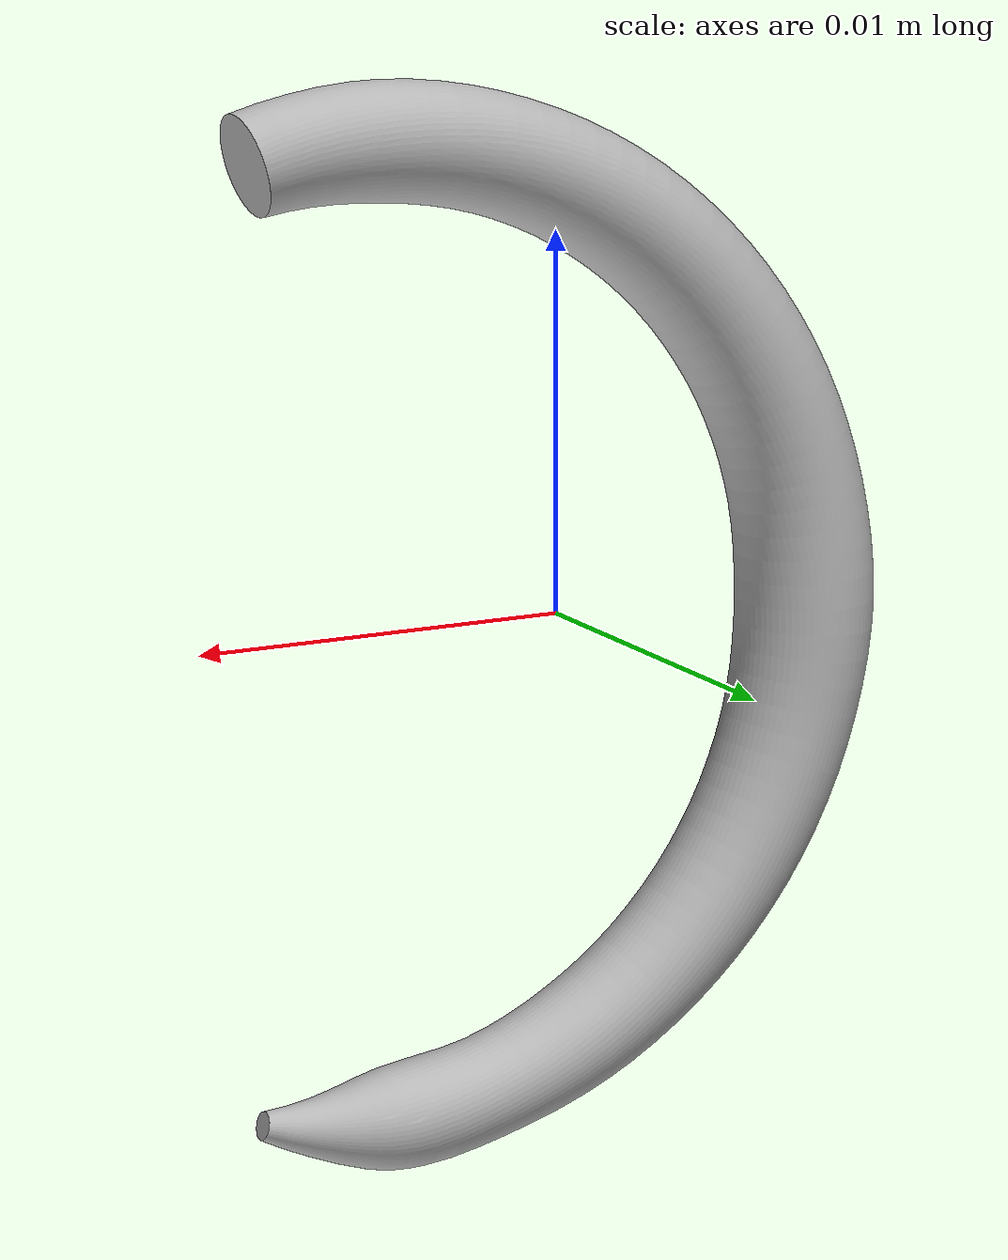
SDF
<sdf version='1.6'>
  <model name='target_object'>
    <link name='right_t1_target_base_link'>
      <pose frame=''>0 0 0 0 -0 0</pose>
      <inertial>
        <pose frame=''>0 0 0 0 -0 0</pose>
        <mass>0.0001</mass>
        <inertia>
          <ixx>1e-09</ixx>
          <ixy>0</ixy>
          <ixz>0</ixz>
          <iyy>1e-09</iyy>
          <iyz>0</iyz>
          <izz>1e-09</izz>
        </inertia>
      </inertial>
      <gravity>1</gravity>
      <velocity_decay/>
      <self_collide>1</self_collide>
    </link>
    <joint name='right_t1_target_base_joint' type='fixed'>
      <child>right_t1_target_base_link</child>
      <parent>world</parent>
    </joint>
    <link name='right_t1_target_y_link'>
      <pose frame=''>0 0 0 0 -0 0</pose>
      <inertial>
        <pose frame=''>0 0 0 0 -0 0</pose>
        <mass>0.0001</mass>
        <inertia>
          <ixx>1e-09</ixx>
          <ixy>0</ixy>
          <ixz>0</ixz>
          <iyy>1e-09</iyy>
          <iyz>0</iyz>
          <izz>1e-09</izz>
        </inertia>
      </inertial>
      <gravity>1</gravity>
      <velocity_decay/>
      <self_collide>1</self_collide>
    </link>
    <joint name='right_t1_target_x_joint' type='prismatic'>
      <child>right_t1_target_y_link</child>
      <parent>right_t1_target_base_link</parent>
      <axis>
        <xyz>1 0 0</xyz>
        <limit>
          <lower>-0.02</lower>
          <upper>0.02</upper>
          <effort>1000</effort>
          <velocity>0.4</velocity>
        </limit>
        <dynamics>
          <spring_reference>0</spring_reference>
          <spring_stiffness>0</spring_stiffness>
        </dynamics>
        <use_parent_model_frame>1</use_parent_model_frame>
      </axis>
    </joint>
    <link name='right_t1_target_z_link'>
      <pose frame=''>0 0 0 0 -0 0</pose>
      <inertial>
        <pose frame=''>0 0 0 0 -0 0</pose>
        <mass>0.001</mass>
        <inertia>
          <ixx>1e-08</ixx>
          <ixy>0</ixy>
          <ixz>0</ixz>
          <iyy>1e-08</iyy>
          <iyz>0</iyz>
          <izz>1e-08</izz>
        </inertia>
      </inertial>
      <gravity>1</gravity>
      <velocity_decay/>
      <self_collide>1</self_collide>
    </link>
    <joint name='right_t1_target_y_joint' type='prismatic'>
      <child>right_t1_target_z_link</child>
      <parent>right_t1_target_y_link</parent>
      <axis>
        <xyz>0 1 0</xyz>
        <limit>
          <lower>-0.02</lower>
          <upper>0.02</upper>
          <effort>1000</effort>
          <velocity>0.4</velocity>
        </limit>
        <dynamics>
          <spring_reference>0</spring_reference>
          <spring_stiffness>0</spring_stiffness>
        </dynamics>
        <use_parent_model_frame>1</use_parent_model_frame>
      </axis>
    </joint>
    <link name='right_t1_target_main_link'>
      <pose frame=''>0 0 0 0 -0 0</pose>
      <inertial>
        <pose frame=''>-0.00277 -0.000602 -0 0 -0 0</pose>
        <mass>3.7311e-05</mass>
        <inertia>
          <ixx>2.99391e-08</ixx>
          <ixy>-1.99519e-09</ixy>
          <ixz>2.72589e-15</ixz>
          <iyy>8.27991e-09</iyy>
          <iyz>3.38024e-14</iyz>
          <izz>3.77118e-08</izz>
        </inertia>
      </inertial>
      <collision name='right_t1_target_main_link_collision'>
        <pose frame=''>0 0 0 0 -0 0</pose>
        <geometry>
          <mesh>
            <scale>1 1 1</scale>
            <uri>model://surgical_sim/models/meshes/stl/target/target.STL</uri>
          </mesh>
        </geometry>
        <surface>
          <contact>
            <ode/>
          </contact>
          <friction>
            <ode>
              <mu>1000</mu>
              <mu2>1000</mu2>
            </ode>
          </friction>
        </surface>
      </collision>
      <visual name='right_t1_target_main_link_visual'>
        <pose frame=''>0 0 0 0 -0 0</pose>
        <geometry>
          <mesh>
            <scale>1 1 1</scale>
            <uri>model://surgical_sim/models/meshes/stl/target/target.STL</uri>
          </mesh>
        </geometry>
        <material>
          <script>
            <uri>__default__</uri>
            <name>__default__</name>
          </script>
        </material>
      </visual>
      <gravity>1</gravity>
      <velocity_decay/>
      <self_collide>1</self_collide>
    </link>
    <joint name='right_t1_target_z_joint' type='prismatic'>
      <child>right_t1_target_main_link</child>
      <parent>right_t1_target_z_link</parent>
      <axis>
        <xyz>0 0 1</xyz>
        <limit>
          <lower>-0.01</lower>
          <upper>0.04</upper>
          <effort>1000</effort>
          <velocity>0.4</velocity>
        </limit>
        <dynamics>
          <spring_reference>0</spring_reference>
          <spring_stiffness>0</spring_stiffness>
        </dynamics>
        <use_parent_model_frame>1</use_parent_model_frame>
      </axis>
    </joint>
    <static>0</static>
    <plugin name='gazebo_ros_control' filename='libgazebo_ros_control.so'>
      <robotNamespace>/right_t1_target</robotNamespace>
      <robotSimType>gazebo_ros_control/DefaultRobotHWSim</robotSimType>
      <legacyModeNS>true</legacyModeNS>
    </plugin>
  </model>
</sdf>
